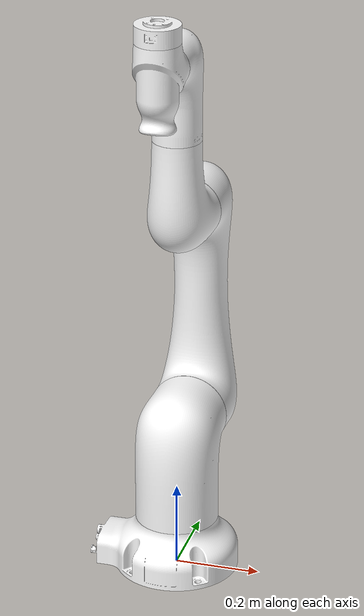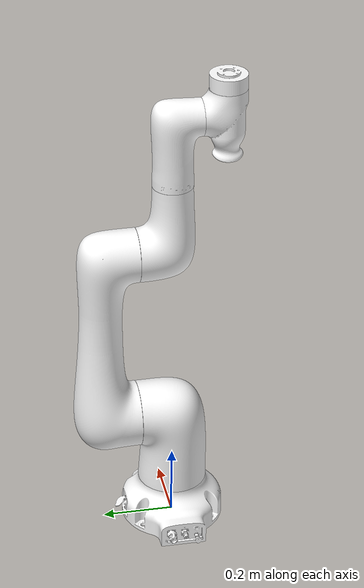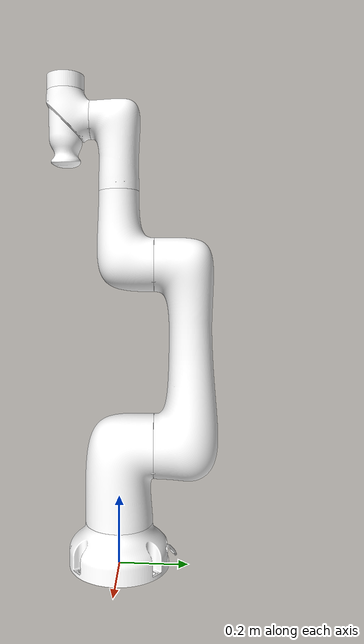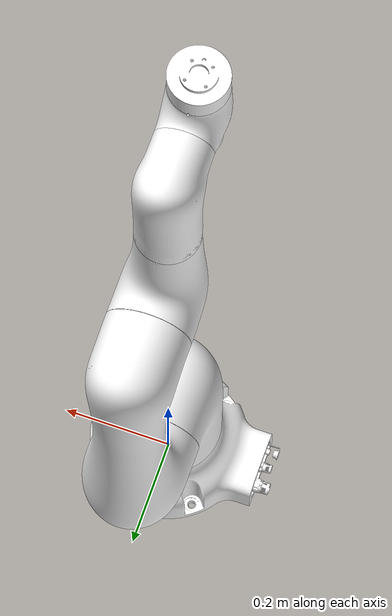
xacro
<?xml version="1.0"?>
<robot xmlns:xacro="http://www.ros.org/wiki/xacro" name="xMateCR18">
    <xacro:arg name="initial_positions_file" default="initial_positions.yaml" />

    <!-- Import xMateCR18 urdf file -->
    <xacro:include filename="$(find rokae_description)/urdf/xMateCR18.urdf.xacro" />

    <!-- Import control_xacro -->
    <xacro:include filename="xMateCR18.ros2_control.xacro" />

    <xacro:xMateCR18_ros2_control name="FakeSystem" initial_positions_file="$(arg initial_positions_file)"/>

</robot>

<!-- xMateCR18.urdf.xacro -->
<robot xmlns:xacro="http://www.ros.org/wiki/xacro" name="xMateCR18">
  <!-- Constants for robot dimensions -->
  <material name="black">
    <color rgba="0.0 0.0 0.0 1.0"/>
  </material>
  <material name="blue">
    <color rgba="0.0 0.0 0.8 1.0"/>
  </material>
  <material name="green">
    <color rgba="0.0 0.8 0.0 1.0"/>
  </material>
  <material name="grey">
    <color rgba="0.2 0.2 0.2 1.0"/>
  </material>
  <material name="orange">
    <color rgba="1.0 0.423529411765 0.0392156862745 1.0"/>
  </material>
  <material name="brown">
    <color rgba="0.870588235294 0.811764705882 0.764705882353 1.0"/>
  </material>
  <material name="red">
    <color rgba="0.8 0.0 0.0 1.0"/>
  </material>
  <material name="white">
    <color rgba="1.0 1.0 1.0 1.0"/>
  </material>
  <material name="Beige">
    <color rgba="1.0 0.784 0.5765 1.0"/>
  </material>
  <!-- Used for fixing robot to Gazebo 'base_link' -->
  <link name="world"/>
  <joint name="fixed" type="fixed">
    <parent link="world"/>
    <child link="xMateCR18_base"/>
  </joint>
  <!--base-->
  <link name="xMateCR18_base">
    <visual>
      <geometry>
        <mesh filename="package://rokae_description/meshes/xMateCR18/xMateCR18_base.stl" scale="0.001 0.001 0.001"/>
      </geometry>
      <origin rpy="0 0 0" xyz="0.0 0.0 0.0"/>
      <material name="white"/>
    </visual>
    <collision>
      <geometry>
        <mesh filename="package://rokae_description/meshes/xMateCR18/xMateCR18_base.stl" scale="0.001 0.001 0.001"/>
      </geometry>
      <origin rpy="0 0 0" xyz="0.0 0.0 0.0"/>
    </collision>
  </link>
  <joint name="xMateCR18_joint_1" type="revolute">
    <parent link="xMateCR18_base"/>
    <child link="xMateCR18_link1"/>
    <limit effort="436" lower="-3.0543" upper="3.0543" velocity="2.0943951023931953"/>
    <axis xyz="0 0 1"/>
    <origin rpy="0 0 0" xyz="0.0 0.0 0.0"/>
  </joint>
  <transmission name="tran1">
    <type>transmission_interface/SimpleTransmission</type>
    <joint name="xMateCR18_joint_7">
      <hardwareInterface>EffortJointInterface</hardwareInterface>
    </joint>
    <actuator name="motor1">
      <hardwareInterface>EffortJointInterface</hardwareInterface>
      <mechanicalReduction>1</mechanicalReduction>
    </actuator>
  </transmission>
  <!--link 1-->
  <link name="xMateCR18_link1">
    <visual>
      <geometry>
        <mesh filename="package://rokae_description/meshes/xMateCR18/xMateCR18_link1.stl" scale="0.001 0.001 0.001"/>
      </geometry>
      <origin rpy="0 0 0" xyz="0 0 0"/>
      <material name="white"/>
    </visual>
    <inertial>
      <mass value="9.762"/>
      <inertia ixx="0.13037779" ixy="0.00003839" ixz="0.00015469" iyy="0.10332618" iyz="0.03481509" izz="0.07160903"/>
      <origin rpy="0 0 0" xyz="-5.7e-05 0.039543999999999996 0.26109"/>
    </inertial>
    <collision>
      <geometry>
        <mesh filename="package://rokae_description/meshes/xMateCR18/xMateCR18_link1.stl" scale="0.001 0.001 0.001"/>
      </geometry>
      <origin rpy="0 0 0" xyz="0 0 0"/>
    </collision>
  </link>
  <joint name="xMateCR18_joint_2" type="revolute">
    <parent link="xMateCR18_link1"/>
    <child link="xMateCR18_link2"/>
    <limit effort="436" lower="-2.9671" upper="2.9671" velocity="2.0943951023931953"/>
    <axis xyz="0 1 0"/>
    <origin rpy="0 0 0" xyz="0.0 0.0 0.35"/>
  </joint>
  <transmission name="tran2">
    <type>transmission_interface/SimpleTransmission</type>
    <joint name="xmate_joint_2">
      <hardwareInterface>EffortJointInterface</hardwareInterface>
    </joint>
    <actuator name="motor2">
      <hardwareInterface>EffortJointInterface</hardwareInterface>
      <mechanicalReduction>1</mechanicalReduction>
    </actuator>
  </transmission>
  <!--link 2-->
  <link name="xMateCR18_link2">
    <visual>
      <geometry>
        <mesh filename="package://rokae_description/meshes/xMateCR18/xMateCR18_link2.stl" scale="0.001 0.001 0.001"/>
      </geometry>
      <origin rpy="0 0 0" xyz="0 0 0.0"/>
      <material name="white"/>
    </visual>
    <inertial>
      <mass value="11.884"/>
      <inertia ixx="0.64271076" ixy="0.00013731" ixz="-0.00003451" iyy="0.64056501" iyz="0.00024604" izz="0.05021876"/>
      <origin rpy="0 0 0" xyz="7.3e-05 0.169482 0.216155"/>
    </inertial>
    <collision>
      <geometry>
        <mesh filename="package://rokae_description/meshes/xMateCR18/xMateCR18_link2.stl" scale="0.001 0.001 0.001"/>
      </geometry>
      <origin rpy="0 0 0" xyz="0 0 0.0"/>
    </collision>
  </link>
  <joint name="xMateCR18_joint_3" type="revolute">
    <parent link="xMateCR18_link2"/>
    <child link="xMateCR18_link3"/>
    <limit effort="194" lower="-2.8798" upper="2.8798" velocity="3.141592653589793"/>
    <axis xyz="0 -1 0"/>
    <origin rpy="0 0 0" xyz="0.0 0.0 0.52"/>
  </joint>
  <transmission name="tran3">
    <type>transmission_interface/SimpleTransmission</type>
    <joint name="xmate_joint_3">
      <hardwareInterface>EffortJointInterface</hardwareInterface>
    </joint>
    <actuator name="motor3">
      <hardwareInterface>EffortJointInterface</hardwareInterface>
      <mechanicalReduction>1</mechanicalReduction>
    </actuator>
  </transmission>
  <!--link 3-->
  <link name="xMateCR18_link3">
    <visual>
      <geometry>
        <mesh filename="package://rokae_description/meshes/xMateCR18/xMateCR18_link3.stl" scale="0.001 0.001 0.001"/>
      </geometry>
      <origin rpy="0 0 0" xyz="0 0 0"/>
      <material name="white"/>
    </visual>
    <inertial>
      <mass value="4.659"/>
      <inertia ixx="0.05218042" ixy="-0.00000246" ixz="0.00000101" iyy="0.03753873" iyz="0.01436120" izz="0.02573444"/>
      <origin rpy="0 0 0" xyz="-3.4e-05 -0.05076 0.059953000000000006"/>
    </inertial>
    <collision>
      <geometry>
        <mesh filename="package://rokae_description/meshes/xMateCR18/xMateCR18_link3.stl" scale="0.001 0.001 0.001"/>
      </geometry>
      <origin rpy="0 0 0" xyz="0 0 0"/>
    </collision>
  </link>
  <joint name="xMateCR18_joint_4" type="revolute">
    <parent link="xMateCR18_link3"/>
    <child link="xMateCR18_link4"/>
    <limit effort="102" lower="-3.0543" upper="3.0543" velocity="3.141592653589793"/>
    <!--     lower="-3.0543" upper="3.0543" -->
    <axis xyz="0 0 1"/>
    <origin rpy="0 0 0" xyz="0.0 0.0 0.405"/>
  </joint>
  <transmission name="tran4">
    <type>transmission_interface/SimpleTransmission</type>
    <joint name="xmate_joint_4">
      <hardwareInterface>EffortJointInterface</hardwareInterface>
    </joint>
    <actuator name="motor4">
      <hardwareInterface>EffortJointInterface</hardwareInterface>
      <mechanicalReduction>1</mechanicalReduction>
    </actuator>
  </transmission>
  <!--link 4-->
  <link name="xMateCR18_link4">
    <visual>
      <geometry>
        <mesh filename="package://rokae_description/meshes/xMateCR18/xMateCR18_link4.stl" scale=".001 0.001 0.001"/>
      </geometry>
      <origin rpy="0 0 0" xyz="0.0 0.0 0.0"/>
      <material name="white"/>
    </visual>
    <inertial>
      <mass value="3.327"/>
      <inertia ixx="0.03811846" ixy="-0.00000008" ixz="0.00000244" iyy="0.03675348" iyz="0.00481172" izz="0.00702595"/>
      <origin rpy="0 0 0" xyz="3.9e-05 0.015016 -0.100244"/>
    </inertial>
    <collision>
      <geometry>
        <mesh filename="package://rokae_description/meshes/xMateCR18/xMateCR18_link4.stl" scale="0.001 0.001 0.001"/>
      </geometry>
      <origin rpy="0 0 0" xyz="0.0 0.0 0.0"/>
    </collision>
  </link>
  <joint name="xMateCR18_joint_5" type="revolute">
    <parent link="xMateCR18_link4"/>
    <child link="xMateCR18_link5"/>
    <limit effort="66" lower="-3.0543" upper="3.0543" velocity="3.141592653589793"/>
    <axis xyz="0 -1 0"/>
    <origin rpy="0 0 0" xyz="0.0 -0.15 0.0"/>
  </joint>
  <transmission name="tran5">
    <type>transmission_interface/SimpleTransmission</type>
    <joint name="xmate_joint_5">
      <hardwareInterface>EffortJointInterface</hardwareInterface>
    </joint>
    <actuator name="motor5">
      <hardwareInterface>EffortJointInterface</hardwareInterface>
      <mechanicalReduction>1</mechanicalReduction>
    </actuator>
  </transmission>
  <!--link 5-->
  <link name="xMateCR18_link5">
    <visual>
      <geometry>
        <mesh filename="package://rokae_description/meshes/xMateCR18/xMateCR18_link5.stl" scale="0.001 0.001 0.001"/>
      </geometry>
      <origin rpy="0 0 0" xyz="0 0 0"/>
      <material name="white"/>
    </visual>
    <inertial>
      <mass value="2.34"/>
      <inertia ixx="0.00953363" ixy="-0.00000282" ixz="0.00000824" iyy="0.00581555" iyz="0.00099717" izz="0.00692085"/>
      <origin rpy="0 0 0" xyz="-4.2999999999999995e-05 -0.031099 0.014133"/>
    </inertial>
    <collision>
      <geometry>
        <mesh filename="package://rokae_description/meshes/xMateCR18/xMateCR18_link5.stl" scale="0.001 0.001 0.001"/>
      </geometry>
      <origin rpy="0 0 0" xyz="0 0 0"/>
    </collision>
  </link>
  <joint name="xMateCR18_joint_6" type="revolute">
    <parent link="xMateCR18_link5"/>
    <child link="xMateCR18_link6"/>
    <limit effort="66" lower="-3.0543" upper="3.0543" velocity="3.141592653589793"/>
    <axis xyz="0 0 1"/>
    <origin rpy="0.0 0.0 0" xyz="0.0 0.0 0.127"/>
  </joint>
  <transmission name="tran6">
    <type>transmission_interface/SimpleTransmission</type>
    <joint name="xmate_joint_6">
      <hardwareInterface>EffortJointInterface</hardwareInterface>
    </joint>
    <actuator name="motor6">
      <hardwareInterface>EffortJointInterface</hardwareInterface>
      <mechanicalReduction>1</mechanicalReduction>
    </actuator>
  </transmission>
  <!--link 6-->
  <link name="xMateCR18_link6">
    <visual>
      <geometry>
        <mesh filename="package://rokae_description/meshes/xMateCR18/xMateCR18_link6.stl" scale="0.001 0.001 0.001"/>
      </geometry>
      <origin rpy="0 0 0" xyz="0.0 0.0 0.0"/>
      <material name="white"/>
    </visual>
    <inertial>
      <mass value="1.142"/>
      <inertia ixx="0.00217743" ixy="-0.00000018" ixz="-0.00000015" iyy="0.00218830" iyz="-0.00000570" izz="0.00125122"/>
      <origin rpy="0 0 0" xyz="1e-06 -0.000201 -0.049302"/>
    </inertial>
    <collision>
      <geometry>
        <mesh filename="package://rokae_description/meshes/xMateCR18/xMateCR18_link6.stl" scale="0.001 0.001 0.001"/>
      </geometry>
      <origin rpy="0 0 0" xyz="0.0 0.0 0.0"/>
    </collision>
  </link>
</robot>
